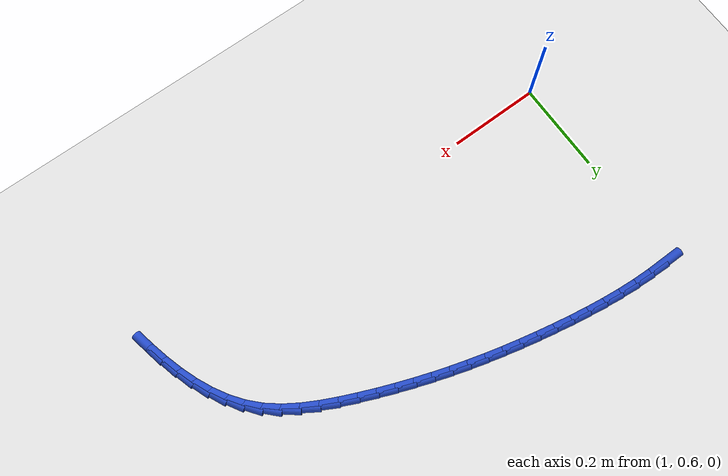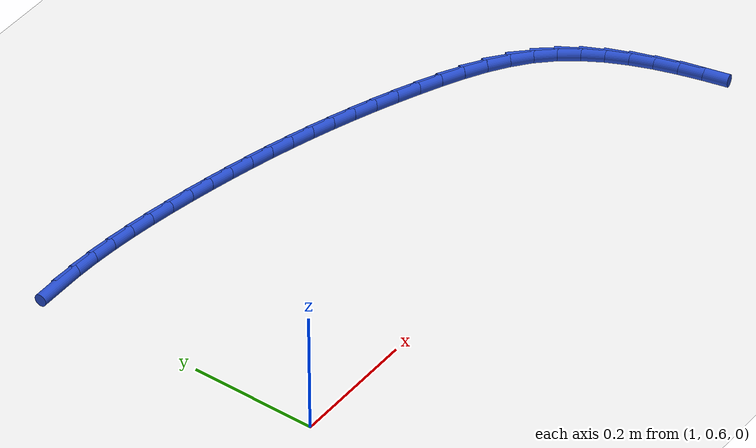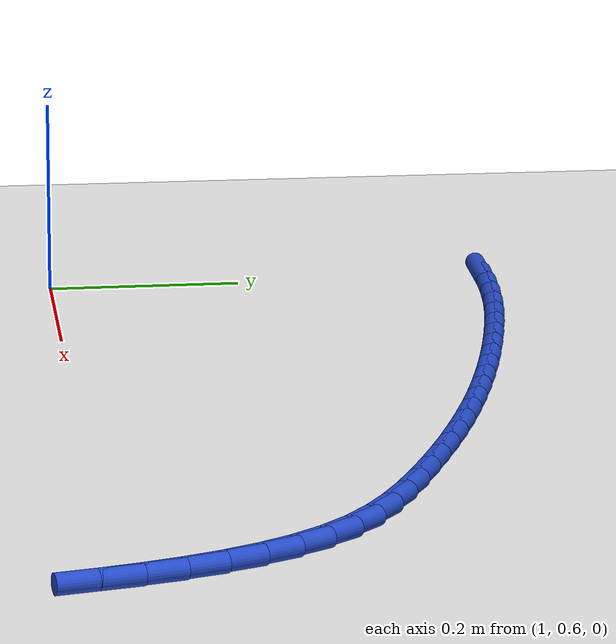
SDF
<sdf version="1.6">
 <world name="default">
  <model name="ground_plane">
   <static>1</static>
   <link name="link">
    <collision name="collision">
     <geometry><plane><normal>0 0 1</normal><size>100 100</size></plane></geometry>
     <surface><friction><ode><mu>100</mu><mu2>50</mu2></ode></friction></surface>
    </collision>
    <visual name="visual">
     <cast_shadows>0</cast_shadows>
     <geometry><plane><normal>0 0 1</normal><size>100 100</size></plane></geometry>
     <material>
      <script><uri>file://media/materials/scripts/gazebo.material</uri><name>Gazebo/WhiteGlow</name></script>
     </material>
    </visual>
   </link>
  </model>
  <model name="line">
   <link name="link_43">
    <pose>1.0169867516316833 1.0591922194592238 0.01 0 1.57 0.001203373568329023</pose>
    <collision name="collision">
     <geometry><cylinder><radius>0.01</radius><length>0.08</length></cylinder></geometry>
    </collision>
    <visual name="visual">
     <material>
      <script><name>Gazebo/Blue</name><uri>file://media/materials/scripts/gazebo.material</uri></script>
     </material>
     <geometry><cylinder><radius>0.01</radius><length>0.08</length></cylinder></geometry>
    </visual>
   </link>
   <link name="link_44">
    <pose>1.0546834499882534 1.0592375826915363 0.01 0 1.57 -0.04298788659620403</pose>
    <collision name="collision">
     <geometry><cylinder><radius>0.01</radius><length>0.08</length></cylinder></geometry>
    </collision>
    <visual name="visual">
     <material>
      <script><name>Gazebo/Blue</name><uri>file://media/materials/scripts/gazebo.material</uri></script>
     </material>
     <geometry><cylinder><radius>0.01</radius><length>0.08</length></cylinder></geometry>
    </visual>
   </link>
   <link name="link_45">
    <pose>1.092604883643395 1.0576064155018294 0.01 0 1.57 -0.08163515361936827</pose>
    <collision name="collision">
     <geometry><cylinder><radius>0.01</radius><length>0.08</length></cylinder></geometry>
    </collision>
    <visual name="visual">
     <material>
      <script><name>Gazebo/Blue</name><uri>file://media/materials/scripts/gazebo.material</uri></script>
     </material>
     <geometry><cylinder><radius>0.01</radius><length>0.08</length></cylinder></geometry>
    </visual>
   </link>
   <link name="link_46">
    <pose>1.1306425897802175 1.054494285055992 0.01 0 1.57 -0.11507527590830363</pose>
    <collision name="collision">
     <geometry><cylinder><radius>0.01</radius><length>0.08</length></cylinder></geometry>
    </collision>
    <visual name="visual">
     <material>
      <script><name>Gazebo/Blue</name><uri>file://media/materials/scripts/gazebo.material</uri></script>
     </material>
     <geometry><cylinder><radius>0.01</radius><length>0.08</length></cylinder></geometry>
    </visual>
   </link>
   <link name="link_47">
    <pose>1.1686881055818281 1.0500967585199132 0.01 0 1.57 -0.14361827449836448</pose>
    <collision name="collision">
     <geometry><cylinder><radius>0.01</radius><length>0.08</length></cylinder></geometry>
    </collision>
    <visual name="visual">
     <material>
      <script><name>Gazebo/Blue</name><uri>file://media/materials/scripts/gazebo.material</uri></script>
     </material>
     <geometry><cylinder><radius>0.01</radius><length>0.08</length></cylinder></geometry>
    </visual>
   </link>
   <link name="link_48">
    <pose>1.2066329682313353 1.044609403059481 0.01 0 1.57 -0.16752825161588547</pose>
    <collision name="collision">
     <geometry><cylinder><radius>0.01</radius><length>0.08</length></cylinder></geometry>
    </collision>
    <visual name="visual">
     <material>
      <script><name>Gazebo/Blue</name><uri>file://media/materials/scripts/gazebo.material</uri></script>
     </material>
     <geometry><cylinder><radius>0.01</radius><length>0.08</length></cylinder></geometry>
    </visual>
   </link>
   <link name="link_49">
    <pose>1.2443687149118474 1.038227785840585 0.01 0 1.57 -0.18701559287580305</pose>
    <collision name="collision">
     <geometry><cylinder><radius>0.01</radius><length>0.08</length></cylinder></geometry>
    </collision>
    <visual name="visual">
     <material>
      <script><name>Gazebo/Blue</name><uri>file://media/materials/scripts/gazebo.material</uri></script>
     </material>
     <geometry><cylinder><radius>0.01</radius><length>0.08</length></cylinder></geometry>
    </visual>
   </link>
   <link name="link_50">
    <pose>1.2817870331970609 1.0311472367425183 0.01 0 1.57 -0.20359769543448197</pose>
    <collision name="collision">
     <geometry><cylinder><radius>0.01</radius><length>0.08</length></cylinder></geometry>
    </collision>
    <visual name="visual">
     <material>
      <script><name>Gazebo/Blue</name><uri>file://media/materials/scripts/gazebo.material</uri></script>
     </material>
     <geometry><cylinder><radius>0.01</radius><length>0.08</length></cylinder></geometry>
    </visual>
   </link>
   <link name="link_51">
    <pose>1.3188184587647986 1.023501791021952 0.01 0 1.57 -0.2205141217404757</pose>
    <collision name="collision">
     <geometry><cylinder><radius>0.01</radius><length>0.08</length></cylinder></geometry>
    </collision>
    <visual name="visual">
     <material>
      <script><name>Gazebo/Blue</name><uri>file://media/materials/scripts/gazebo.material</uri></script>
     </material>
     <geometry><cylinder><radius>0.01</radius><length>0.08</length></cylinder></geometry>
    </visual>
   </link>
   <link name="link_52">
    <pose>1.3554839020901341 1.0152828903852007 0.01 0 1.57 -0.23817640800000572</pose>
    <collision name="collision">
     <geometry><cylinder><radius>0.01</radius><length>0.08</length></cylinder></geometry>
    </collision>
    <visual name="visual">
     <material>
      <script><name>Gazebo/Blue</name><uri>file://media/materials/scripts/gazebo.material</uri></script>
     </material>
     <geometry><cylinder><radius>0.01</radius><length>0.08</length></cylinder></geometry>
    </visual>
   </link>
   <link name="link_53">
    <pose>1.3918170966571684 1.006461744367231 0.01 0 1.57 -0.2565286266175927</pose>
    <collision name="collision">
     <geometry><cylinder><radius>0.01</radius><length>0.08</length></cylinder></geometry>
    </collision>
    <visual name="visual">
     <material>
      <script><name>Gazebo/Blue</name><uri>file://media/materials/scripts/gazebo.material</uri></script>
     </material>
     <geometry><cylinder><radius>0.01</radius><length>0.08</length></cylinder></geometry>
    </visual>
   </link>
   <link name="link_54">
    <pose>1.427851775950002 0.997009562503008 0.01 0 1.57 -0.27550698098309806</pose>
    <collision name="collision">
     <geometry><cylinder><radius>0.01</radius><length>0.08</length></cylinder></geometry>
    </collision>
    <visual name="visual">
     <material>
      <script><name>Gazebo/Blue</name><uri>file://media/materials/scripts/gazebo.material</uri></script>
     </material>
     <geometry><cylinder><radius>0.01</radius><length>0.08</length></cylinder></geometry>
    </visual>
   </link>
   <link name="link_55">
    <pose>1.4636216734527376 0.9868975543274977 0.01 0 1.57 -0.29504042134941844</pose>
    <collision name="collision">
     <geometry><cylinder><radius>0.01</radius><length>0.08</length></cylinder></geometry>
    </collision>
    <visual name="visual">
     <material>
      <script><name>Gazebo/Blue</name><uri>file://media/materials/scripts/gazebo.material</uri></script>
     </material>
     <geometry><cylinder><radius>0.01</radius><length>0.08</length></cylinder></geometry>
    </visual>
   </link>
   <link name="link_56">
    <pose>1.4991605226494746 0.9760969293756658 0.01 0 1.57 -0.3150514871713586</pose>
    <collision name="collision">
     <geometry><cylinder><radius>0.01</radius><length>0.08</length></cylinder></geometry>
    </collision>
    <visual name="visual">
     <material>
      <script><name>Gazebo/Blue</name><uri>file://media/materials/scripts/gazebo.material</uri></script>
     </material>
     <geometry><cylinder><radius>0.01</radius><length>0.08</length></cylinder></geometry>
    </visual>
   </link>
   <link name="link_57">
    <pose>1.5345020570243153 0.9645788971824787 0.01 0 1.57 -0.33545736025634537</pose>
    <collision name="collision">
     <geometry><cylinder><radius>0.01</radius><length>0.08</length></cylinder></geometry>
    </collision>
    <visual name="visual">
     <material>
      <script><name>Gazebo/Blue</name><uri>file://media/materials/scripts/gazebo.material</uri></script>
     </material>
     <geometry><cylinder><radius>0.01</radius><length>0.08</length></cylinder></geometry>
    </visual>
   </link>
   <link name="link_58">
    <pose>1.5696800100613608 0.9523146672829016 0.01 0 1.57 -0.3561711002442306</pose>
    <collision name="collision">
     <geometry><cylinder><radius>0.01</radius><length>0.08</length></cylinder></geometry>
    </collision>
    <visual name="visual">
     <material>
      <script><name>Gazebo/Blue</name><uri>file://media/materials/scripts/gazebo.material</uri></script>
     </material>
     <geometry><cylinder><radius>0.01</radius><length>0.08</length></cylinder></geometry>
    </visual>
   </link>
   <link name="link_59">
    <pose>1.604728115244712 0.9392754492119006 0.01 0 1.57 -0.37710302210031255</pose>
    <collision name="collision">
     <geometry><cylinder><radius>0.01</radius><length>0.08</length></cylinder></geometry>
    </collision>
    <visual name="visual">
     <material>
      <script><name>Gazebo/Blue</name><uri>file://media/materials/scripts/gazebo.material</uri></script>
     </material>
     <geometry><cylinder><radius>0.01</radius><length>0.08</length></cylinder></geometry>
    </visual>
   </link>
   <link name="link_60">
    <pose>1.6396801060584705 0.9254324525044416 0.01 0 1.57 -0.3981621656709521</pose>
    <collision name="collision">
     <geometry><cylinder><radius>0.01</radius><length>0.08</length></cylinder></geometry>
    </collision>
    <visual name="visual">
     <material>
      <script><name>Gazebo/Blue</name><uri>file://media/materials/scripts/gazebo.material</uri></script>
     </material>
     <geometry><cylinder><radius>0.01</radius><length>0.08</length></cylinder></geometry>
    </visual>
   </link>
   <link name="link_61">
    <pose>1.6745697159867368 0.9107568866954905 0.01 0 1.57 -0.419648851694626</pose>
    <collision name="collision">
     <geometry><cylinder><radius>0.01</radius><length>0.08</length></cylinder></geometry>
    </collision>
    <visual name="visual">
     <material>
      <script><name>Gazebo/Blue</name><uri>file://media/materials/scripts/gazebo.material</uri></script>
     </material>
     <geometry><cylinder><radius>0.01</radius><length>0.08</length></cylinder></geometry>
    </visual>
   </link>
   <link name="link_62">
    <pose>1.709414326497181 0.8952109136957438 0.01 0 1.57 -0.450964357637427</pose>
    <collision name="collision">
     <geometry><cylinder><radius>0.01</radius><length>0.08</length></cylinder></geometry>
    </collision>
    <visual name="visual">
     <material>
      <script><name>Gazebo/Blue</name><uri>file://media/materials/scripts/gazebo.material</uri></script>
     </material>
     <geometry><cylinder><radius>0.01</radius><length>0.08</length></cylinder></geometry>
    </visual>
   </link>
   <link name="link_63">
    <pose>1.7438402660296033 0.8785403244942891 0.01 0 1.57 -0.5026527869906802</pose>
    <collision name="collision">
     <geometry><cylinder><radius>0.01</radius><length>0.08</length></cylinder></geometry>
    </collision>
    <visual name="visual">
     <material>
      <script><name>Gazebo/Blue</name><uri>file://media/materials/scripts/gazebo.material</uri></script>
     </material>
     <geometry><cylinder><radius>0.01</radius><length>0.08</length></cylinder></geometry>
    </visual>
   </link>
   <link name="link_64">
    <pose>1.77707431572101 0.8602698392484598 0.01 0 1.57 -0.5773322456287442</pose>
    <collision name="collision">
     <geometry><cylinder><radius>0.01</radius><length>0.08</length></cylinder></geometry>
    </collision>
    <visual name="visual">
     <material>
      <script><name>Gazebo/Blue</name><uri>file://media/materials/scripts/gazebo.material</uri></script>
     </material>
     <geometry><cylinder><radius>0.01</radius><length>0.08</length></cylinder></geometry>
    </visual>
   </link>
   <link name="link_65">
    <pose>1.8083252055910648 0.8399141903732167 0.01 0 1.57 -0.6778361975565574</pose>
    <collision name="collision">
     <geometry><cylinder><radius>0.01</radius><length>0.08</length></cylinder></geometry>
    </collision>
    <visual name="visual">
     <material>
      <script><name>Gazebo/Blue</name><uri>file://media/materials/scripts/gazebo.material</uri></script>
     </material>
     <geometry><cylinder><radius>0.01</radius><length>0.08</length></cylinder></geometry>
    </visual>
   </link>
   <link name="link_66">
    <pose>1.8368016656594301 0.8169881102835207 0.01 0 1.57 -0.8023753234262269</pose>
    <collision name="collision">
     <geometry><cylinder><radius>0.01</radius><length>0.08</length></cylinder></geometry>
    </collision>
    <visual name="visual">
     <material>
      <script><name>Gazebo/Blue</name><uri>file://media/materials/scripts/gazebo.material</uri></script>
     </material>
     <geometry><cylinder><radius>0.01</radius><length>0.08</length></cylinder></geometry>
    </visual>
   </link>
   <link name="link_67">
    <pose>1.8618315590400658 0.7910935817719302 0.01 0 1.57 -0.9249435416934194</pose>
    <collision name="collision">
     <geometry><cylinder><radius>0.01</radius><length>0.08</length></cylinder></geometry>
    </collision>
    <visual name="visual">
     <material>
      <script><name>Gazebo/Blue</name><uri>file://media/materials/scripts/gazebo.material</uri></script>
     </material>
     <geometry><cylinder><radius>0.01</radius><length>0.08</length></cylinder></geometry>
    </visual>
   </link>
   <link name="link_68">
    <pose>1.8834787545645817 0.7623716215338526 0.01 0 1.57 -1.033032346026315</pose>
    <collision name="collision">
     <geometry><cylinder><radius>0.01</radius><length>0.08</length></cylinder></geometry>
    </collision>
    <visual name="visual">
     <material>
      <script><name>Gazebo/Blue</name><uri>file://media/materials/scripts/gazebo.material</uri></script>
     </material>
     <geometry><cylinder><radius>0.01</radius><length>0.08</length></cylinder></geometry>
    </visual>
   </link>
   <link name="link_69">
    <pose>1.9020878917542827 0.7311688763529461 0.01 0 1.57 -1.1253564243198841</pose>
    <collision name="collision">
     <geometry><cylinder><radius>0.01</radius><length>0.08</length></cylinder></geometry>
    </collision>
    <visual name="visual">
     <material>
      <script><name>Gazebo/Blue</name><uri>file://media/materials/scripts/gazebo.material</uri></script>
     </material>
     <geometry><cylinder><radius>0.01</radius><length>0.08</length></cylinder></geometry>
    </visual>
   </link>
   <link name="link_70">
    <pose>1.9180041664193725 0.6978324004262481 0.01 0 1.57 -1.2021425630270233</pose>
    <collision name="collision">
     <geometry><cylinder><radius>0.01</radius><length>0.08</length></cylinder></geometry>
    </collision>
    <visual name="visual">
     <material>
      <script><name>Gazebo/Blue</name><uri>file://media/materials/scripts/gazebo.material</uri></script>
     </material>
     <geometry><cylinder><radius>0.01</radius><length>0.08</length></cylinder></geometry>
    </visual>
   </link>
   <link name="link_71">
    <pose>1.9315727743700553 0.6627092479507951 0.01 0 1.57 -1.264420190518695</pose>
    <collision name="collision">
     <geometry><cylinder><radius>0.01</radius><length>0.08</length></cylinder></geometry>
    </collision>
    <visual name="visual">
     <material>
      <script><name>Gazebo/Blue</name><uri>file://media/materials/scripts/gazebo.material</uri></script>
     </material>
     <geometry><cylinder><radius>0.01</radius><length>0.08</length></cylinder></geometry>
    </visual>
   </link>
   <link name="link_72">
    <pose>1.9431389114165358 0.6261464731236253 0.01 0 1.57 -1.313483510984047</pose>
    <collision name="collision">
     <geometry><cylinder><radius>0.01</radius><length>0.08</length></cylinder></geometry>
    </collision>
    <visual name="visual">
     <material>
      <script><name>Gazebo/Blue</name><uri>file://media/materials/scripts/gazebo.material</uri></script>
     </material>
     <geometry><cylinder><radius>0.01</radius><length>0.08</length></cylinder></geometry>
    </visual>
   </link>
   <link name="link_73">
    <pose>1.9530477733690177 0.5884911301417752 0.01 0 1.57 -1.3505581205387494</pose>
    <collision name="collision">
     <geometry><cylinder><radius>0.01</radius><length>0.08</length></cylinder></geometry>
    </collision>
    <visual name="visual">
     <material>
      <script><name>Gazebo/Blue</name><uri>file://media/materials/scripts/gazebo.material</uri></script>
     </material>
     <geometry><cylinder><radius>0.01</radius><length>0.08</length></cylinder></geometry>
    </visual>
   </link>
  </model>
 </world>
</sdf>
